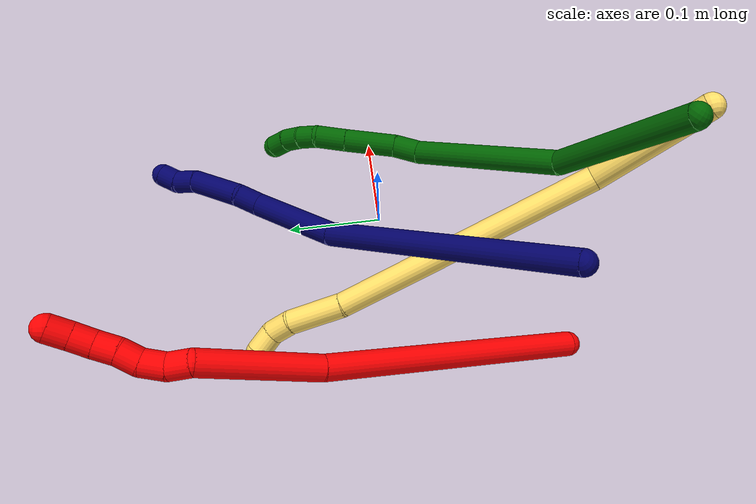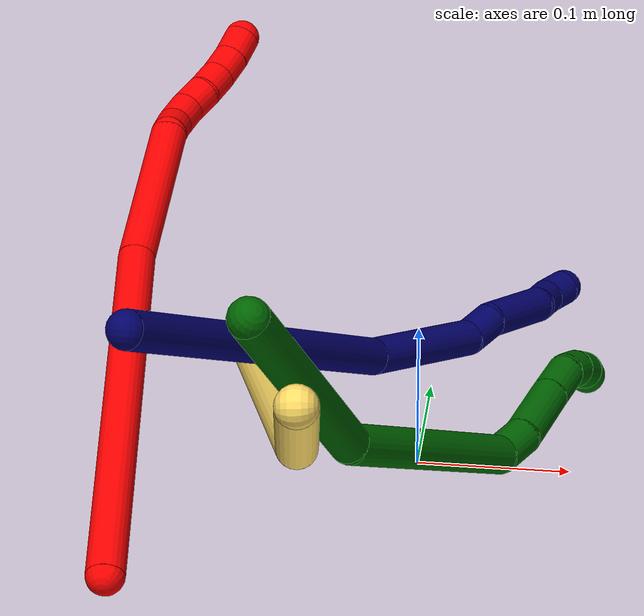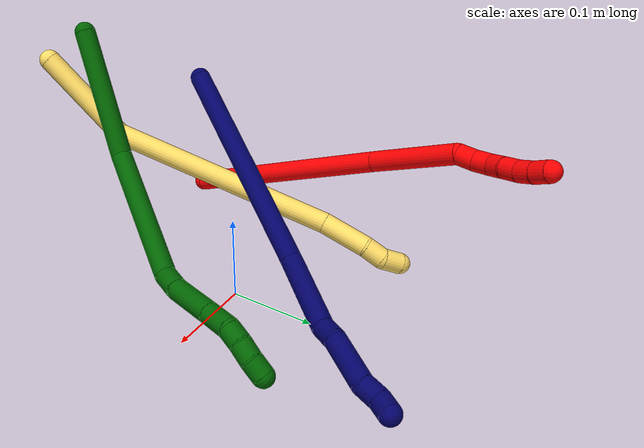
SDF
<sdf version="1.7">
 <world name="default">
  <model name="2">
   <static>0</static>
   <link name="2">
    <collision name="collision-cylinder-e_1_1_4">
     <pose>-0.014871 0.023188 0.128229 -0.1789 -0.113627 0.010202</pose>
     <geometry><cylinder><radius>0.0125</radius><length>0.262309</length></cylinder></geometry>
     <surface>
      <friction><ode><mu>1.16</mu><mu2>1.16</mu2><slip1>0</slip1><slip2>0</slip2></ode></friction>
      <contact><ode><kp>1e+06</kp><kd>1</kd><max_vel>0</max_vel><min_depth>0.001</min_depth></ode></contact>
     </surface>
    </collision>
    <visual name="visual-cylinder-e_1_1_4">
     <pose>-0.014871 0.023188 0.128229 -0.1789 -0.113627 0.010202</pose>
     <geometry><cylinder><radius>0.0125</radius><length>0.262309</length></cylinder></geometry>
     <material><ambient>1 0 0 1</ambient></material>
    </visual>
    <collision name="collision-cylinder-e_2_4_5">
     <pose>-0.042029 0.051682 0.311785 -0.095614 -0.217575 0.010451</pose>
     <geometry><cylinder><radius>0.0125</radius><length>0.113847</length></cylinder></geometry>
     <surface>
      <friction><ode><mu>1.16</mu><mu2>1.16</mu2><slip1>0</slip1><slip2>0</slip2></ode></friction>
      <contact><ode><kp>1e+06</kp><kd>1</kd><max_vel>0</max_vel><min_depth>0.001</min_depth></ode></contact>
     </surface>
    </collision>
    <visual name="visual-cylinder-e_2_4_5">
     <pose>-0.042029 0.051682 0.311785 -0.095614 -0.217575 0.010451</pose>
     <geometry><cylinder><radius>0.0125</radius><length>0.113847</length></cylinder></geometry>
     <material><ambient>1 0 0 1</ambient></material>
    </visual>
    <collision name="collision-cylinder-e_3_5_6">
     <pose>-0.052069 0.055121 0.377386 0.179868 0.212081 0.019196</pose>
     <geometry><cylinder><radius>0.0125</radius><length>0.021361</length></cylinder></geometry>
     <surface>
      <friction><ode><mu>1.16</mu><mu2>1.16</mu2><slip1>0</slip1><slip2>0</slip2></ode></friction>
      <contact><ode><kp>1e+06</kp><kd>1</kd><max_vel>0</max_vel><min_depth>0.001</min_depth></ode></contact>
     </surface>
    </collision>
    <visual name="visual-cylinder-e_3_5_6">
     <pose>-0.052069 0.055121 0.377386 0.179868 0.212081 0.019196</pose>
     <geometry><cylinder><radius>0.0125</radius><length>0.021361</length></cylinder></geometry>
     <material><ambient>1 0 0 1</ambient></material>
    </visual>
    <collision name="collision-cylinder-e_4_6_7">
     <pose>-0.051446 0.050841 0.398464 0.219578 -0.145811 -0.016101</pose>
     <geometry><cylinder><radius>0.0125</radius><length>0.022379</length></cylinder></geometry>
     <surface>
      <friction><ode><mu>1.16</mu><mu2>1.16</mu2><slip1>0</slip1><slip2>0</slip2></ode></friction>
      <contact><ode><kp>1e+06</kp><kd>1</kd><max_vel>0</max_vel><min_depth>0.001</min_depth></ode></contact>
     </surface>
    </collision>
    <visual name="visual-cylinder-e_4_6_7">
     <pose>-0.051446 0.050841 0.398464 0.219578 -0.145811 -0.016101</pose>
     <geometry><cylinder><radius>0.0125</radius><length>0.022379</length></cylinder></geometry>
     <material><ambient>1 0 0 1</ambient></material>
    </visual>
    <collision name="collision-cylinder-e_5_7_8">
     <pose>-0.057433 0.045515 0.417806 0.32903 -0.4503 -0.076009</pose>
     <geometry><cylinder><radius>0.0125</radius><length>0.020041</length></cylinder></geometry>
     <surface>
      <friction><ode><mu>1.16</mu><mu2>1.16</mu2><slip1>0</slip1><slip2>0</slip2></ode></friction>
      <contact><ode><kp>1e+06</kp><kd>1</kd><max_vel>0</max_vel><min_depth>0.001</min_depth></ode></contact>
     </surface>
    </collision>
    <visual name="visual-cylinder-e_5_7_8">
     <pose>-0.057433 0.045515 0.417806 0.32903 -0.4503 -0.076009</pose>
     <geometry><cylinder><radius>0.0125</radius><length>0.020041</length></cylinder></geometry>
     <material><ambient>1 0 0 1</ambient></material>
    </visual>
    <collision name="collision-cylinder-e_6_8_9">
     <pose>-0.064625 0.040121 0.43563 0.260816 -0.286375 -0.037813</pose>
     <geometry><cylinder><radius>0.0125</radius><length>0.020039</length></cylinder></geometry>
     <surface>
      <friction><ode><mu>1.16</mu><mu2>1.16</mu2><slip1>0</slip1><slip2>0</slip2></ode></friction>
      <contact><ode><kp>1e+06</kp><kd>1</kd><max_vel>0</max_vel><min_depth>0.001</min_depth></ode></contact>
     </surface>
    </collision>
    <visual name="visual-cylinder-e_6_8_9">
     <pose>-0.064625 0.040121 0.43563 0.260816 -0.286375 -0.037813</pose>
     <geometry><cylinder><radius>0.0125</radius><length>0.020039</length></cylinder></geometry>
     <material><ambient>1 0 0 1</ambient></material>
    </visual>
    <collision name="collision-cylinder-e_7_9_10">
     <pose>-0.071341 0.036028 0.453989 0.176165 -0.399078 -0.035714</pose>
     <geometry><cylinder><radius>0.0125</radius><length>0.020003</length></cylinder></geometry>
     <surface>
      <friction><ode><mu>1.16</mu><mu2>1.16</mu2><slip1>0</slip1><slip2>0</slip2></ode></friction>
      <contact><ode><kp>1e+06</kp><kd>1</kd><max_vel>0</max_vel><min_depth>0.001</min_depth></ode></contact>
     </surface>
    </collision>
    <visual name="visual-cylinder-e_7_9_10">
     <pose>-0.071341 0.036028 0.453989 0.176165 -0.399078 -0.035714</pose>
     <geometry><cylinder><radius>0.0125</radius><length>0.020003</length></cylinder></geometry>
     <material><ambient>1 0 0 1</ambient></material>
    </visual>
    <collision name="collision-cylinder-e_8_10_2">
     <pose>-0.07951 0.033905 0.472096 0.056083 -0.442058 -0.012605</pose>
     <geometry><cylinder><radius>0.0125</radius><length>0.020021</length></cylinder></geometry>
     <surface>
      <friction><ode><mu>1.16</mu><mu2>1.16</mu2><slip1>0</slip1><slip2>0</slip2></ode></friction>
      <contact><ode><kp>1e+06</kp><kd>1</kd><max_vel>0</max_vel><min_depth>0.001</min_depth></ode></contact>
     </surface>
    </collision>
    <visual name="visual-cylinder-e_8_10_2">
     <pose>-0.07951 0.033905 0.472096 0.056083 -0.442058 -0.012605</pose>
     <geometry><cylinder><radius>0.0125</radius><length>0.020021</length></cylinder></geometry>
     <material><ambient>1 0 0 1</ambient></material>
    </visual>
    <collision name="collision-sphere-2">
     <pose>-0.083793 0.033398 0.481131 0 -0 0</pose>
     <geometry><sphere><radius>0.0125</radius></sphere></geometry>
     <surface>
      <friction><ode><mu>1.16</mu><mu2>1.16</mu2><slip1>0</slip1><slip2>0</slip2></ode></friction>
      <contact><ode><kp>1e+06</kp><kd>1</kd><max_vel>0</max_vel><min_depth>0.001</min_depth></ode></contact>
     </surface>
    </collision>
    <visual name="visual-sphere-2">
     <pose>-0.083793 0.033398 0.481131 0 -0 0</pose>
     <geometry><sphere><radius>0.0125</radius></sphere></geometry>
     <material><ambient>1 0 0 1</ambient></material>
    </visual>
    <collision name="collision-sphere-10">
     <pose>-0.075227 0.034413 0.463062 0 -0 0</pose>
     <geometry><sphere><radius>0.0125</radius></sphere></geometry>
     <surface>
      <friction><ode><mu>1.16</mu><mu2>1.16</mu2><slip1>0</slip1><slip2>0</slip2></ode></friction>
      <contact><ode><kp>1e+06</kp><kd>1</kd><max_vel>0</max_vel><min_depth>0.001</min_depth></ode></contact>
     </surface>
    </collision>
    <visual name="visual-sphere-10">
     <pose>-0.075227 0.034413 0.463062 0 -0 0</pose>
     <geometry><sphere><radius>0.0125</radius></sphere></geometry>
     <material><ambient>1 0 0 1</ambient></material>
    </visual>
    <collision name="collision-sphere-9">
     <pose>-0.067455 0.037643 0.444916 0 -0 0</pose>
     <geometry><sphere><radius>0.0125</radius></sphere></geometry>
     <surface>
      <friction><ode><mu>1.16</mu><mu2>1.16</mu2><slip1>0</slip1><slip2>0</slip2></ode></friction>
      <contact><ode><kp>1e+06</kp><kd>1</kd><max_vel>0</max_vel><min_depth>0.001</min_depth></ode></contact>
     </surface>
    </collision>
    <visual name="visual-sphere-9">
     <pose>-0.067455 0.037643 0.444916 0 -0 0</pose>
     <geometry><sphere><radius>0.0125</radius></sphere></geometry>
     <material><ambient>1 0 0 1</ambient></material>
    </visual>
    <collision name="collision-sphere-4">
     <pose>-0.029741 0.046376 0.256458 0 -0 0</pose>
     <geometry><sphere><radius>0.0125</radius></sphere></geometry>
     <surface>
      <friction><ode><mu>1.16</mu><mu2>1.16</mu2><slip1>0</slip1><slip2>0</slip2></ode></friction>
      <contact><ode><kp>1e+06</kp><kd>1</kd><max_vel>0</max_vel><min_depth>0.001</min_depth></ode></contact>
     </surface>
    </collision>
    <visual name="visual-sphere-4">
     <pose>-0.029741 0.046376 0.256458 0 -0 0</pose>
     <geometry><sphere><radius>0.0125</radius></sphere></geometry>
     <material><ambient>1 0 0 1</ambient></material>
    </visual>
    <collision name="collision-sphere-1">
     <geometry><sphere><radius>0.0125</radius></sphere></geometry>
     <surface>
      <friction><ode><mu>1.16</mu><mu2>1.16</mu2><slip1>0</slip1><slip2>0</slip2></ode></friction>
      <contact><ode><kp>1e+06</kp><kd>1</kd><max_vel>0</max_vel><min_depth>0.001</min_depth></ode></contact>
     </surface>
    </collision>
    <visual name="visual-sphere-1">
     <geometry><sphere><radius>0.0125</radius></sphere></geometry>
     <material><ambient>1 0 0 1</ambient></material>
    </visual>
    <collision name="collision-sphere-8">
     <pose>-0.061794 0.0426 0.426344 0 -0 0</pose>
     <geometry><sphere><radius>0.0125</radius></sphere></geometry>
     <surface>
      <friction><ode><mu>1.16</mu><mu2>1.16</mu2><slip1>0</slip1><slip2>0</slip2></ode></friction>
      <contact><ode><kp>1e+06</kp><kd>1</kd><max_vel>0</max_vel><min_depth>0.001</min_depth></ode></contact>
     </surface>
    </collision>
    <visual name="visual-sphere-8">
     <pose>-0.061794 0.0426 0.426344 0 -0 0</pose>
     <geometry><sphere><radius>0.0125</radius></sphere></geometry>
     <material><ambient>1 0 0 1</ambient></material>
    </visual>
    <collision name="collision-sphere-5">
     <pose>-0.054317 0.056989 0.367113 0 -0 0</pose>
     <geometry><sphere><radius>0.0125</radius></sphere></geometry>
     <surface>
      <friction><ode><mu>1.16</mu><mu2>1.16</mu2><slip1>0</slip1><slip2>0</slip2></ode></friction>
      <contact><ode><kp>1e+06</kp><kd>1</kd><max_vel>0</max_vel><min_depth>0.001</min_depth></ode></contact>
     </surface>
    </collision>
    <visual name="visual-sphere-5">
     <pose>-0.054317 0.056989 0.367113 0 -0 0</pose>
     <geometry><sphere><radius>0.0125</radius></sphere></geometry>
     <material><ambient>1 0 0 1</ambient></material>
    </visual>
    <collision name="collision-sphere-6">
     <pose>-0.04982 0.053253 0.387659 0 -0 0</pose>
     <geometry><sphere><radius>0.0125</radius></sphere></geometry>
     <surface>
      <friction><ode><mu>1.16</mu><mu2>1.16</mu2><slip1>0</slip1><slip2>0</slip2></ode></friction>
      <contact><ode><kp>1e+06</kp><kd>1</kd><max_vel>0</max_vel><min_depth>0.001</min_depth></ode></contact>
     </surface>
    </collision>
    <visual name="visual-sphere-6">
     <pose>-0.04982 0.053253 0.387659 0 -0 0</pose>
     <geometry><sphere><radius>0.0125</radius></sphere></geometry>
     <material><ambient>1 0 0 1</ambient></material>
    </visual>
    <collision name="collision-sphere-7">
     <pose>-0.053072 0.04843 0.409269 0 -0 0</pose>
     <geometry><sphere><radius>0.0125</radius></sphere></geometry>
     <surface>
      <friction><ode><mu>1.16</mu><mu2>1.16</mu2><slip1>0</slip1><slip2>0</slip2></ode></friction>
      <contact><ode><kp>1e+06</kp><kd>1</kd><max_vel>0</max_vel><min_depth>0.001</min_depth></ode></contact>
     </surface>
    </collision>
    <visual name="visual-sphere-7">
     <pose>-0.053072 0.04843 0.409269 0 -0 0</pose>
     <geometry><sphere><radius>0.0125</radius></sphere></geometry>
     <material><ambient>1 0 0 1</ambient></material>
    </visual>
    <inertial>
     <pose>-0.032828 0.034794 0.243492 0 -0 0</pose>
     <mass>0.5</mass>
     <inertia>
      <ixx>0.001647</ixx>
      <ixy>0</ixy>
      <ixz>0</ixz>
      <iyy>0.001645</iyy>
      <iyz>0</iyz>
      <izz>-3.9e-05</izz>
     </inertia>
    </inertial>
   </link>
   <pose>-0.173604 -0.172957 0.011498 1.30635 0.916984 2.94623</pose>
  </model>
  <model name="5">
   <static>0</static>
   <link name="5">
    <collision name="collision-cylinder-e_1_1_4">
     <pose>0.017881 0.057506 -0.008095 -1.71065 0.298697 -0.34287</pose>
     <geometry><cylinder><radius>0.0125</radius><length>0.121528</length></cylinder></geometry>
     <surface>
      <friction><ode><mu>1.16</mu><mu2>1.16</mu2><slip1>0</slip1><slip2>0</slip2></ode></friction>
      <contact><ode><kp>1e+06</kp><kd>1</kd><max_vel>0</max_vel><min_depth>0.001</min_depth></ode></contact>
     </surface>
    </collision>
    <visual name="visual-cylinder-e_1_1_4">
     <pose>0.017881 0.057506 -0.008095 -1.71065 0.298697 -0.34287</pose>
     <geometry><cylinder><radius>0.0125</radius><length>0.121528</length></cylinder></geometry>
     <material><ambient>1 0.858824 0.4 1</ambient></material>
    </visual>
    <collision name="collision-cylinder-e_2_4_5">
     <pose>0.017568 0.24707 -0.048089 -1.80781 -0.133136 0.168971</pose>
     <geometry><cylinder><radius>0.0125</radius><length>0.274137</length></cylinder></geometry>
     <surface>
      <friction><ode><mu>1.16</mu><mu2>1.16</mu2><slip1>0</slip1><slip2>0</slip2></ode></friction>
      <contact><ode><kp>1e+06</kp><kd>1</kd><max_vel>0</max_vel><min_depth>0.001</min_depth></ode></contact>
     </surface>
    </collision>
    <visual name="visual-cylinder-e_2_4_5">
     <pose>0.017568 0.24707 -0.048089 -1.80781 -0.133136 0.168971</pose>
     <geometry><cylinder><radius>0.0125</radius><length>0.274137</length></cylinder></geometry>
     <material><ambient>1 0.858824 0.4 1</ambient></material>
    </visual>
    <collision name="collision-cylinder-e_3_5_6">
     <pose>-0.003825 0.407118 -0.082033 -1.64373 -0.113449 0.12202</pose>
     <geometry><cylinder><radius>0.0125</radius><length>0.056493</length></cylinder></geometry>
     <surface>
      <friction><ode><mu>1.16</mu><mu2>1.16</mu2><slip1>0</slip1><slip2>0</slip2></ode></friction>
      <contact><ode><kp>1e+06</kp><kd>1</kd><max_vel>0</max_vel><min_depth>0.001</min_depth></ode></contact>
     </surface>
    </collision>
    <visual name="visual-cylinder-e_3_5_6">
     <pose>-0.003825 0.407118 -0.082033 -1.64373 -0.113449 0.12202</pose>
     <geometry><cylinder><radius>0.0125</radius><length>0.056493</length></cylinder></geometry>
     <material><ambient>1 0.858824 0.4 1</ambient></material>
    </visual>
    <collision name="collision-cylinder-e_4_6_7">
     <pose>-0.00589 0.44676 -0.086339 -1.76239 0.095099 -0.115278</pose>
     <geometry><cylinder><radius>0.0125</radius><length>0.023846</length></cylinder></geometry>
     <surface>
      <friction><ode><mu>1.16</mu><mu2>1.16</mu2><slip1>0</slip1><slip2>0</slip2></ode></friction>
      <contact><ode><kp>1e+06</kp><kd>1</kd><max_vel>0</max_vel><min_depth>0.001</min_depth></ode></contact>
     </surface>
    </collision>
    <visual name="visual-cylinder-e_4_6_7">
     <pose>-0.00589 0.44676 -0.086339 -1.76239 0.095099 -0.115278</pose>
     <geometry><cylinder><radius>0.0125</radius><length>0.023846</length></cylinder></geometry>
     <material><ambient>1 0.858824 0.4 1</ambient></material>
    </visual>
    <collision name="collision-cylinder-e_5_7_2">
     <pose>-0.00448 0.467924 -0.095906 -2.22584 0.023176 -0.047023</pose>
     <geometry><cylinder><radius>0.0125</radius><length>0.023997</length></cylinder></geometry>
     <surface>
      <friction><ode><mu>1.16</mu><mu2>1.16</mu2><slip1>0</slip1><slip2>0</slip2></ode></friction>
      <contact><ode><kp>1e+06</kp><kd>1</kd><max_vel>0</max_vel><min_depth>0.001</min_depth></ode></contact>
     </surface>
    </collision>
    <visual name="visual-cylinder-e_5_7_2">
     <pose>-0.00448 0.467924 -0.095906 -2.22584 0.023176 -0.047023</pose>
     <geometry><cylinder><radius>0.0125</radius><length>0.023997</length></cylinder></geometry>
     <material><ambient>1 0.858824 0.4 1</ambient></material>
    </visual>
    <collision name="collision-sphere-2">
     <pose>-0.004202 0.477436 -0.103213 0 -0 0</pose>
     <geometry><sphere><radius>0.0125</radius></sphere></geometry>
     <surface>
      <friction><ode><mu>1.16</mu><mu2>1.16</mu2><slip1>0</slip1><slip2>0</slip2></ode></friction>
      <contact><ode><kp>1e+06</kp><kd>1</kd><max_vel>0</max_vel><min_depth>0.001</min_depth></ode></contact>
     </surface>
    </collision>
    <visual name="visual-sphere-2">
     <pose>-0.004202 0.477436 -0.103213 0 -0 0</pose>
     <geometry><sphere><radius>0.0125</radius></sphere></geometry>
     <material><ambient>1 0.858824 0.4 1</ambient></material>
    </visual>
    <collision name="collision-sphere-7">
     <pose>-0.004758 0.458412 -0.088599 0 -0 0</pose>
     <geometry><sphere><radius>0.0125</radius></sphere></geometry>
     <surface>
      <friction><ode><mu>1.16</mu><mu2>1.16</mu2><slip1>0</slip1><slip2>0</slip2></ode></friction>
      <contact><ode><kp>1e+06</kp><kd>1</kd><max_vel>0</max_vel><min_depth>0.001</min_depth></ode></contact>
     </surface>
    </collision>
    <visual name="visual-sphere-7">
     <pose>-0.004758 0.458412 -0.088599 0 -0 0</pose>
     <geometry><sphere><radius>0.0125</radius></sphere></geometry>
     <material><ambient>1 0.858824 0.4 1</ambient></material>
    </visual>
    <collision name="collision-sphere-6">
     <pose>-0.007022 0.435108 -0.084078 0 -0 0</pose>
     <geometry><sphere><radius>0.0125</radius></sphere></geometry>
     <surface>
      <friction><ode><mu>1.16</mu><mu2>1.16</mu2><slip1>0</slip1><slip2>0</slip2></ode></friction>
      <contact><ode><kp>1e+06</kp><kd>1</kd><max_vel>0</max_vel><min_depth>0.001</min_depth></ode></contact>
     </surface>
    </collision>
    <visual name="visual-sphere-6">
     <pose>-0.007022 0.435108 -0.084078 0 -0 0</pose>
     <geometry><sphere><radius>0.0125</radius></sphere></geometry>
     <material><ambient>1 0.858824 0.4 1</ambient></material>
    </visual>
    <collision name="collision-sphere-5">
     <pose>-0.000627 0.379128 -0.079988 0 -0 0</pose>
     <geometry><sphere><radius>0.0125</radius></sphere></geometry>
     <surface>
      <friction><ode><mu>1.16</mu><mu2>1.16</mu2><slip1>0</slip1><slip2>0</slip2></ode></friction>
      <contact><ode><kp>1e+06</kp><kd>1</kd><max_vel>0</max_vel><min_depth>0.001</min_depth></ode></contact>
     </surface>
    </collision>
    <visual name="visual-sphere-5">
     <pose>-0.000627 0.379128 -0.079988 0 -0 0</pose>
     <geometry><sphere><radius>0.0125</radius></sphere></geometry>
     <material><ambient>1 0.858824 0.4 1</ambient></material>
    </visual>
    <collision name="collision-sphere-1">
     <geometry><sphere><radius>0.0125</radius></sphere></geometry>
     <surface>
      <friction><ode><mu>1.16</mu><mu2>1.16</mu2><slip1>0</slip1><slip2>0</slip2></ode></friction>
      <contact><ode><kp>1e+06</kp><kd>1</kd><max_vel>0</max_vel><min_depth>0.001</min_depth></ode></contact>
     </surface>
    </collision>
    <visual name="visual-sphere-1">
     <geometry><sphere><radius>0.0125</radius></sphere></geometry>
     <material><ambient>1 0.858824 0.4 1</ambient></material>
    </visual>
    <collision name="collision-sphere-4">
     <pose>0.035763 0.115013 -0.01619 0 -0 0</pose>
     <geometry><sphere><radius>0.0125</radius></sphere></geometry>
     <surface>
      <friction><ode><mu>1.16</mu><mu2>1.16</mu2><slip1>0</slip1><slip2>0</slip2></ode></friction>
      <contact><ode><kp>1e+06</kp><kd>1</kd><max_vel>0</max_vel><min_depth>0.001</min_depth></ode></contact>
     </surface>
    </collision>
    <visual name="visual-sphere-4">
     <pose>0.035763 0.115013 -0.01619 0 -0 0</pose>
     <geometry><sphere><radius>0.0125</radius></sphere></geometry>
     <material><ambient>1 0.858824 0.4 1</ambient></material>
    </visual>
    <inertial>
     <pose>0.01305 0.239202 -0.046323 0 -0 0</pose>
     <mass>0.5</mass>
     <inertia>
      <ixx>0.002088</ixx>
      <ixy>0</ixy>
      <ixz>0</ixz>
      <iyy>-9.3e-05</iyy>
      <iyz>0</iyz>
      <izz>-0.001654</izz>
     </inertia>
    </inertial>
   </link>
   <pose>-0.038227 -0.293816 0.20989 -1.37208 1.14391 -1.35436</pose>
  </model>
  <model name="6">
   <static>0</static>
   <link name="6">
    <collision name="collision-cylinder-e_1_1_4">
     <pose>0.049081 0.012956 -0.058581 -2.92393 0.685658 -2.54746</pose>
     <geometry><cylinder><radius>0.0125</radius><length>0.15503</length></cylinder></geometry>
     <surface>
      <friction><ode><mu>1.16</mu><mu2>1.16</mu2><slip1>0</slip1><slip2>0</slip2></ode></friction>
      <contact><ode><kp>1e+06</kp><kd>1</kd><max_vel>0</max_vel><min_depth>0.001</min_depth></ode></contact>
     </surface>
    </collision>
    <visual name="visual-cylinder-e_1_1_4">
     <pose>0.049081 0.012956 -0.058581 -2.92393 0.685658 -2.54746</pose>
     <geometry><cylinder><radius>0.0125</radius><length>0.15503</length></cylinder></geometry>
     <material><ambient>0 0.392157 0.003922 1</ambient></material>
    </visual>
    <collision name="collision-cylinder-e_2_4_5">
     <pose>0.151452 0.072523 -0.161942 -2.33617 0.689479 -1.40074</pose>
     <geometry><cylinder><radius>0.0125</radius><length>0.167542</length></cylinder></geometry>
     <surface>
      <friction><ode><mu>1.16</mu><mu2>1.16</mu2><slip1>0</slip1><slip2>0</slip2></ode></friction>
      <contact><ode><kp>1e+06</kp><kd>1</kd><max_vel>0</max_vel><min_depth>0.001</min_depth></ode></contact>
     </surface>
    </collision>
    <visual name="visual-cylinder-e_2_4_5">
     <pose>0.151452 0.072523 -0.161942 -2.33617 0.689479 -1.40074</pose>
     <geometry><cylinder><radius>0.0125</radius><length>0.167542</length></cylinder></geometry>
     <material><ambient>0 0.392157 0.003922 1</ambient></material>
    </visual>
    <collision name="collision-cylinder-e_3_5_6">
     <pose>0.210309 0.131535 -0.210979 -1.90145 0.401554 -0.555344</pose>
     <geometry><cylinder><radius>0.0125</radius><length>0.028491</length></cylinder></geometry>
     <surface>
      <friction><ode><mu>1.16</mu><mu2>1.16</mu2><slip1>0</slip1><slip2>0</slip2></ode></friction>
      <contact><ode><kp>1e+06</kp><kd>1</kd><max_vel>0</max_vel><min_depth>0.001</min_depth></ode></contact>
     </surface>
    </collision>
    <visual name="visual-cylinder-e_3_5_6">
     <pose>0.210309 0.131535 -0.210979 -1.90145 0.401554 -0.555344</pose>
     <geometry><cylinder><radius>0.0125</radius><length>0.028491</length></cylinder></geometry>
     <material><ambient>0 0.392157 0.003922 1</ambient></material>
    </visual>
    <collision name="collision-cylinder-e_4_6_7">
     <pose>0.221985 0.1688 -0.225872 -1.97501 0.222167 -0.334904</pose>
     <geometry><cylinder><radius>0.0125</radius><length>0.055447</length></cylinder></geometry>
     <surface>
      <friction><ode><mu>1.16</mu><mu2>1.16</mu2><slip1>0</slip1><slip2>0</slip2></ode></friction>
      <contact><ode><kp>1e+06</kp><kd>1</kd><max_vel>0</max_vel><min_depth>0.001</min_depth></ode></contact>
     </surface>
    </collision>
    <visual name="visual-cylinder-e_4_6_7">
     <pose>0.221985 0.1688 -0.225872 -1.97501 0.222167 -0.334904</pose>
     <geometry><cylinder><radius>0.0125</radius><length>0.055447</length></cylinder></geometry>
     <material><ambient>0 0.392157 0.003922 1</ambient></material>
    </visual>
    <collision name="collision-cylinder-e_5_7_8">
     <pose>0.231919 0.208416 -0.242553 -1.95968 0.235461 -0.348984</pose>
     <geometry><cylinder><radius>0.0125</radius><length>0.032793</length></cylinder></geometry>
     <surface>
      <friction><ode><mu>1.16</mu><mu2>1.16</mu2><slip1>0</slip1><slip2>0</slip2></ode></friction>
      <contact><ode><kp>1e+06</kp><kd>1</kd><max_vel>0</max_vel><min_depth>0.001</min_depth></ode></contact>
     </surface>
    </collision>
    <visual name="visual-cylinder-e_5_7_8">
     <pose>0.231919 0.208416 -0.242553 -1.95968 0.235461 -0.348984</pose>
     <geometry><cylinder><radius>0.0125</radius><length>0.032793</length></cylinder></geometry>
     <material><ambient>0 0.392157 0.003922 1</ambient></material>
    </visual>
    <collision name="collision-cylinder-e_6_8_9">
     <pose>0.240076 0.230211 -0.254751 -2.28901 0.433746 -0.903441</pose>
     <geometry><cylinder><radius>0.0125</radius><length>0.020611</length></cylinder></geometry>
     <surface>
      <friction><ode><mu>1.16</mu><mu2>1.16</mu2><slip1>0</slip1><slip2>0</slip2></ode></friction>
      <contact><ode><kp>1e+06</kp><kd>1</kd><max_vel>0</max_vel><min_depth>0.001</min_depth></ode></contact>
     </surface>
    </collision>
    <visual name="visual-cylinder-e_6_8_9">
     <pose>0.240076 0.230211 -0.254751 -2.28901 0.433746 -0.903441</pose>
     <geometry><cylinder><radius>0.0125</radius><length>0.020611</length></cylinder></geometry>
     <material><ambient>0 0.392157 0.003922 1</ambient></material>
    </visual>
    <collision name="collision-cylinder-e_7_9_10">
     <pose>0.249165 0.242732 -0.267813 -2.47101 0.494861 -1.25455</pose>
     <geometry><cylinder><radius>0.0125</radius><length>0.020038</length></cylinder></geometry>
     <surface>
      <friction><ode><mu>1.16</mu><mu2>1.16</mu2><slip1>0</slip1><slip2>0</slip2></ode></friction>
      <contact><ode><kp>1e+06</kp><kd>1</kd><max_vel>0</max_vel><min_depth>0.001</min_depth></ode></contact>
     </surface>
    </collision>
    <visual name="visual-cylinder-e_7_9_10">
     <pose>0.249165 0.242732 -0.267813 -2.47101 0.494861 -1.25455</pose>
     <geometry><cylinder><radius>0.0125</radius><length>0.020038</length></cylinder></geometry>
     <material><ambient>0 0.392157 0.003922 1</ambient></material>
    </visual>
    <collision name="collision-cylinder-e_8_10_2">
     <pose>0.257617 0.252401 -0.283045 -2.67528 0.377356 -1.35444</pose>
     <geometry><cylinder><radius>0.0125</radius><length>0.020049</length></cylinder></geometry>
     <surface>
      <friction><ode><mu>1.16</mu><mu2>1.16</mu2><slip1>0</slip1><slip2>0</slip2></ode></friction>
      <contact><ode><kp>1e+06</kp><kd>1</kd><max_vel>0</max_vel><min_depth>0.001</min_depth></ode></contact>
     </surface>
    </collision>
    <visual name="visual-cylinder-e_8_10_2">
     <pose>0.257617 0.252401 -0.283045 -2.67528 0.377356 -1.35444</pose>
     <geometry><cylinder><radius>0.0125</radius><length>0.020049</length></cylinder></geometry>
     <material><ambient>0 0.392157 0.003922 1</ambient></material>
    </visual>
    <collision name="collision-sphere-2">
     <pose>0.26131 0.256591 -0.291369 0 -0 0</pose>
     <geometry><sphere><radius>0.0125</radius></sphere></geometry>
     <surface>
      <friction><ode><mu>1.16</mu><mu2>1.16</mu2><slip1>0</slip1><slip2>0</slip2></ode></friction>
      <contact><ode><kp>1e+06</kp><kd>1</kd><max_vel>0</max_vel><min_depth>0.001</min_depth></ode></contact>
     </surface>
    </collision>
    <visual name="visual-sphere-2">
     <pose>0.26131 0.256591 -0.291369 0 -0 0</pose>
     <geometry><sphere><radius>0.0125</radius></sphere></geometry>
     <material><ambient>0 0.392157 0.003922 1</ambient></material>
    </visual>
    <collision name="collision-sphere-10">
     <pose>0.253923 0.248211 -0.27472 0 -0 0</pose>
     <geometry><sphere><radius>0.0125</radius></sphere></geometry>
     <surface>
      <friction><ode><mu>1.16</mu><mu2>1.16</mu2><slip1>0</slip1><slip2>0</slip2></ode></friction>
      <contact><ode><kp>1e+06</kp><kd>1</kd><max_vel>0</max_vel><min_depth>0.001</min_depth></ode></contact>
     </surface>
    </collision>
    <visual name="visual-sphere-10">
     <pose>0.253923 0.248211 -0.27472 0 -0 0</pose>
     <geometry><sphere><radius>0.0125</radius></sphere></geometry>
     <material><ambient>0 0.392157 0.003922 1</ambient></material>
    </visual>
    <collision name="collision-sphere-9">
     <pose>0.244407 0.237252 -0.260905 0 -0 0</pose>
     <geometry><sphere><radius>0.0125</radius></sphere></geometry>
     <surface>
      <friction><ode><mu>1.16</mu><mu2>1.16</mu2><slip1>0</slip1><slip2>0</slip2></ode></friction>
      <contact><ode><kp>1e+06</kp><kd>1</kd><max_vel>0</max_vel><min_depth>0.001</min_depth></ode></contact>
     </surface>
    </collision>
    <visual name="visual-sphere-9">
     <pose>0.244407 0.237252 -0.260905 0 -0 0</pose>
     <geometry><sphere><radius>0.0125</radius></sphere></geometry>
     <material><ambient>0 0.392157 0.003922 1</ambient></material>
    </visual>
    <collision name="collision-sphere-4">
     <pose>0.098162 0.025912 -0.117162 0 -0 0</pose>
     <geometry><sphere><radius>0.0125</radius></sphere></geometry>
     <surface>
      <friction><ode><mu>1.16</mu><mu2>1.16</mu2><slip1>0</slip1><slip2>0</slip2></ode></friction>
      <contact><ode><kp>1e+06</kp><kd>1</kd><max_vel>0</max_vel><min_depth>0.001</min_depth></ode></contact>
     </surface>
    </collision>
    <visual name="visual-sphere-4">
     <pose>0.098162 0.025912 -0.117162 0 -0 0</pose>
     <geometry><sphere><radius>0.0125</radius></sphere></geometry>
     <material><ambient>0 0.392157 0.003922 1</ambient></material>
    </visual>
    <collision name="collision-sphere-1">
     <geometry><sphere><radius>0.0125</radius></sphere></geometry>
     <surface>
      <friction><ode><mu>1.16</mu><mu2>1.16</mu2><slip1>0</slip1><slip2>0</slip2></ode></friction>
      <contact><ode><kp>1e+06</kp><kd>1</kd><max_vel>0</max_vel><min_depth>0.001</min_depth></ode></contact>
     </surface>
    </collision>
    <visual name="visual-sphere-1">
     <geometry><sphere><radius>0.0125</radius></sphere></geometry>
     <material><ambient>0 0.392157 0.003922 1</ambient></material>
    </visual>
    <collision name="collision-sphere-8">
     <pose>0.235745 0.22317 -0.248598 0 -0 0</pose>
     <geometry><sphere><radius>0.0125</radius></sphere></geometry>
     <surface>
      <friction><ode><mu>1.16</mu><mu2>1.16</mu2><slip1>0</slip1><slip2>0</slip2></ode></friction>
      <contact><ode><kp>1e+06</kp><kd>1</kd><max_vel>0</max_vel><min_depth>0.001</min_depth></ode></contact>
     </surface>
    </collision>
    <visual name="visual-sphere-8">
     <pose>0.235745 0.22317 -0.248598 0 -0 0</pose>
     <geometry><sphere><radius>0.0125</radius></sphere></geometry>
     <material><ambient>0 0.392157 0.003922 1</ambient></material>
    </visual>
    <collision name="collision-sphere-5">
     <pose>0.204741 0.119133 -0.206722 0 -0 0</pose>
     <geometry><sphere><radius>0.0125</radius></sphere></geometry>
     <surface>
      <friction><ode><mu>1.16</mu><mu2>1.16</mu2><slip1>0</slip1><slip2>0</slip2></ode></friction>
      <contact><ode><kp>1e+06</kp><kd>1</kd><max_vel>0</max_vel><min_depth>0.001</min_depth></ode></contact>
     </surface>
    </collision>
    <visual name="visual-sphere-5">
     <pose>0.204741 0.119133 -0.206722 0 -0 0</pose>
     <geometry><sphere><radius>0.0125</radius></sphere></geometry>
     <material><ambient>0 0.392157 0.003922 1</ambient></material>
    </visual>
    <collision name="collision-sphere-6">
     <pose>0.215877 0.143937 -0.215236 0 -0 0</pose>
     <geometry><sphere><radius>0.0125</radius></sphere></geometry>
     <surface>
      <friction><ode><mu>1.16</mu><mu2>1.16</mu2><slip1>0</slip1><slip2>0</slip2></ode></friction>
      <contact><ode><kp>1e+06</kp><kd>1</kd><max_vel>0</max_vel><min_depth>0.001</min_depth></ode></contact>
     </surface>
    </collision>
    <visual name="visual-sphere-6">
     <pose>0.215877 0.143937 -0.215236 0 -0 0</pose>
     <geometry><sphere><radius>0.0125</radius></sphere></geometry>
     <material><ambient>0 0.392157 0.003922 1</ambient></material>
    </visual>
    <collision name="collision-sphere-7">
     <pose>0.228094 0.193662 -0.236507 0 -0 0</pose>
     <geometry><sphere><radius>0.0125</radius></sphere></geometry>
     <surface>
      <friction><ode><mu>1.16</mu><mu2>1.16</mu2><slip1>0</slip1><slip2>0</slip2></ode></friction>
      <contact><ode><kp>1e+06</kp><kd>1</kd><max_vel>0</max_vel><min_depth>0.001</min_depth></ode></contact>
     </surface>
    </collision>
    <visual name="visual-sphere-7">
     <pose>0.228094 0.193662 -0.236507 0 -0 0</pose>
     <geometry><sphere><radius>0.0125</radius></sphere></geometry>
     <material><ambient>0 0.392157 0.003922 1</ambient></material>
    </visual>
    <inertial>
     <pose>0.14799 0.09754 -0.157989 0 -0 0</pose>
     <mass>0.5</mass>
     <inertia>
      <ixx>-0.00056</ixx>
      <ixy>0</ixy>
      <ixz>0</ixz>
      <iyy>-2.5e-05</iyy>
      <iyz>0</iyz>
      <izz>-0.000783</izz>
     </inertia>
    </inertial>
   </link>
   <pose>-0.068493 -0.259503 0.24243 0.531985 0.493465 -0.004686</pose>
  </model>
  <model name="7">
   <static>0</static>
   <link name="7">
    <collision name="collision-cylinder-e_1_1_4">
     <pose>0.061873 0.122752 -0.005367 -1.61449 0.466501 -0.486547</pose>
     <geometry><cylinder><radius>0.0125</radius><length>0.275138</length></cylinder></geometry>
     <surface>
      <friction><ode><mu>1.16</mu><mu2>1.16</mu2><slip1>0</slip1><slip2>0</slip2></ode></friction>
      <contact><ode><kp>1e+06</kp><kd>1</kd><max_vel>0</max_vel><min_depth>0.001</min_depth></ode></contact>
     </surface>
    </collision>
    <visual name="visual-cylinder-e_1_1_4">
     <pose>0.061873 0.122752 -0.005367 -1.61449 0.466501 -0.486547</pose>
     <geometry><cylinder><radius>0.0125</radius><length>0.275138</length></cylinder></geometry>
     <material><ambient>0.003922 0 0.403922 1</ambient></material>
    </visual>
    <collision name="collision-cylinder-e_2_4_5">
     <pose>0.152921 0.283853 -0.002464 -1.3584 0.639418 -0.522353</pose>
     <geometry><cylinder><radius>0.0125</radius><length>0.097779</length></cylinder></geometry>
     <surface>
      <friction><ode><mu>1.16</mu><mu2>1.16</mu2><slip1>0</slip1><slip2>0</slip2></ode></friction>
      <contact><ode><kp>1e+06</kp><kd>1</kd><max_vel>0</max_vel><min_depth>0.001</min_depth></ode></contact>
     </surface>
    </collision>
    <visual name="visual-cylinder-e_2_4_5">
     <pose>0.152921 0.283853 -0.002464 -1.3584 0.639418 -0.522353</pose>
     <geometry><cylinder><radius>0.0125</radius><length>0.097779</length></cylinder></geometry>
     <material><ambient>0.003922 0 0.403922 1</ambient></material>
    </visual>
    <collision name="collision-cylinder-e_3_5_6">
     <pose>0.188599 0.331084 0.012346 -0.936053 0.532857 -0.274181</pose>
     <geometry><cylinder><radius>0.0125</radius><length>0.025609</length></cylinder></geometry>
     <surface>
      <friction><ode><mu>1.16</mu><mu2>1.16</mu2><slip1>0</slip1><slip2>0</slip2></ode></friction>
      <contact><ode><kp>1e+06</kp><kd>1</kd><max_vel>0</max_vel><min_depth>0.001</min_depth></ode></contact>
     </surface>
    </collision>
    <visual name="visual-cylinder-e_3_5_6">
     <pose>0.188599 0.331084 0.012346 -0.936053 0.532857 -0.274181</pose>
     <geometry><cylinder><radius>0.0125</radius><length>0.025609</length></cylinder></geometry>
     <material><ambient>0.003922 0 0.403922 1</ambient></material>
    </visual>
    <collision name="collision-cylinder-e_4_6_7">
     <pose>0.210609 0.363932 0.025532 -1.30028 0.557461 -0.428557</pose>
     <geometry><cylinder><radius>0.0125</radius><length>0.058617</length></cylinder></geometry>
     <surface>
      <friction><ode><mu>1.16</mu><mu2>1.16</mu2><slip1>0</slip1><slip2>0</slip2></ode></friction>
      <contact><ode><kp>1e+06</kp><kd>1</kd><max_vel>0</max_vel><min_depth>0.001</min_depth></ode></contact>
     </surface>
    </collision>
    <visual name="visual-cylinder-e_4_6_7">
     <pose>0.210609 0.363932 0.025532 -1.30028 0.557461 -0.428557</pose>
     <geometry><cylinder><radius>0.0125</radius><length>0.058617</length></cylinder></geometry>
     <material><ambient>0.003922 0 0.403922 1</ambient></material>
    </visual>
    <collision name="collision-cylinder-e_5_7_8">
     <pose>0.228722 0.39859 0.03514 -1.30061 0.230912 -0.175981</pose>
     <geometry><cylinder><radius>0.0125</radius><length>0.022793</length></cylinder></geometry>
     <surface>
      <friction><ode><mu>1.16</mu><mu2>1.16</mu2><slip1>0</slip1><slip2>0</slip2></ode></friction>
      <contact><ode><kp>1e+06</kp><kd>1</kd><max_vel>0</max_vel><min_depth>0.001</min_depth></ode></contact>
     </surface>
    </collision>
    <visual name="visual-cylinder-e_5_7_8">
     <pose>0.228722 0.39859 0.03514 -1.30061 0.230912 -0.175981</pose>
     <geometry><cylinder><radius>0.0125</radius><length>0.022793</length></cylinder></geometry>
     <material><ambient>0.003922 0 0.403922 1</ambient></material>
    </visual>
    <collision name="collision-cylinder-e_6_8_2">
     <pose>0.237002 0.416565 0.042028 -1.07633 0.600865 -0.365743</pose>
     <geometry><cylinder><radius>0.0125</radius><length>0.020064</length></cylinder></geometry>
     <surface>
      <friction><ode><mu>1.16</mu><mu2>1.16</mu2><slip1>0</slip1><slip2>0</slip2></ode></friction>
      <contact><ode><kp>1e+06</kp><kd>1</kd><max_vel>0</max_vel><min_depth>0.001</min_depth></ode></contact>
     </surface>
    </collision>
    <visual name="visual-cylinder-e_6_8_2">
     <pose>0.237002 0.416565 0.042028 -1.07633 0.600865 -0.365743</pose>
     <geometry><cylinder><radius>0.0125</radius><length>0.020064</length></cylinder></geometry>
     <material><ambient>0.003922 0 0.403922 1</ambient></material>
    </visual>
    <collision name="collision-sphere-2">
     <pose>0.242674 0.423849 0.045955 0 -0 0</pose>
     <geometry><sphere><radius>0.0125</radius></sphere></geometry>
     <surface>
      <friction><ode><mu>1.16</mu><mu2>1.16</mu2><slip1>0</slip1><slip2>0</slip2></ode></friction>
      <contact><ode><kp>1e+06</kp><kd>1</kd><max_vel>0</max_vel><min_depth>0.001</min_depth></ode></contact>
     </surface>
    </collision>
    <visual name="visual-sphere-2">
     <pose>0.242674 0.423849 0.045955 0 -0 0</pose>
     <geometry><sphere><radius>0.0125</radius></sphere></geometry>
     <material><ambient>0.003922 0 0.403922 1</ambient></material>
    </visual>
    <collision name="collision-sphere-4">
     <pose>0.123747 0.245504 -0.010734 0 -0 0</pose>
     <geometry><sphere><radius>0.0125</radius></sphere></geometry>
     <surface>
      <friction><ode><mu>1.16</mu><mu2>1.16</mu2><slip1>0</slip1><slip2>0</slip2></ode></friction>
      <contact><ode><kp>1e+06</kp><kd>1</kd><max_vel>0</max_vel><min_depth>0.001</min_depth></ode></contact>
     </surface>
    </collision>
    <visual name="visual-sphere-4">
     <pose>0.123747 0.245504 -0.010734 0 -0 0</pose>
     <geometry><sphere><radius>0.0125</radius></sphere></geometry>
     <material><ambient>0.003922 0 0.403922 1</ambient></material>
    </visual>
    <collision name="collision-sphere-1">
     <geometry><sphere><radius>0.0125</radius></sphere></geometry>
     <surface>
      <friction><ode><mu>1.16</mu><mu2>1.16</mu2><slip1>0</slip1><slip2>0</slip2></ode></friction>
      <contact><ode><kp>1e+06</kp><kd>1</kd><max_vel>0</max_vel><min_depth>0.001</min_depth></ode></contact>
     </surface>
    </collision>
    <visual name="visual-sphere-1">
     <geometry><sphere><radius>0.0125</radius></sphere></geometry>
     <material><ambient>0.003922 0 0.403922 1</ambient></material>
    </visual>
    <collision name="collision-sphere-8">
     <pose>0.231331 0.409282 0.038101 0 -0 0</pose>
     <geometry><sphere><radius>0.0125</radius></sphere></geometry>
     <surface>
      <friction><ode><mu>1.16</mu><mu2>1.16</mu2><slip1>0</slip1><slip2>0</slip2></ode></friction>
      <contact><ode><kp>1e+06</kp><kd>1</kd><max_vel>0</max_vel><min_depth>0.001</min_depth></ode></contact>
     </surface>
    </collision>
    <visual name="visual-sphere-8">
     <pose>0.231331 0.409282 0.038101 0 -0 0</pose>
     <geometry><sphere><radius>0.0125</radius></sphere></geometry>
     <material><ambient>0.003922 0 0.403922 1</ambient></material>
    </visual>
    <collision name="collision-sphere-5">
     <pose>0.182095 0.322203 0.005806 0 -0 0</pose>
     <geometry><sphere><radius>0.0125</radius></sphere></geometry>
     <surface>
      <friction><ode><mu>1.16</mu><mu2>1.16</mu2><slip1>0</slip1><slip2>0</slip2></ode></friction>
      <contact><ode><kp>1e+06</kp><kd>1</kd><max_vel>0</max_vel><min_depth>0.001</min_depth></ode></contact>
     </surface>
    </collision>
    <visual name="visual-sphere-5">
     <pose>0.182095 0.322203 0.005806 0 -0 0</pose>
     <geometry><sphere><radius>0.0125</radius></sphere></geometry>
     <material><ambient>0.003922 0 0.403922 1</ambient></material>
    </visual>
    <collision name="collision-sphere-6">
     <pose>0.195104 0.339965 0.018886 0 -0 0</pose>
     <geometry><sphere><radius>0.0125</radius></sphere></geometry>
     <surface>
      <friction><ode><mu>1.16</mu><mu2>1.16</mu2><slip1>0</slip1><slip2>0</slip2></ode></friction>
      <contact><ode><kp>1e+06</kp><kd>1</kd><max_vel>0</max_vel><min_depth>0.001</min_depth></ode></contact>
     </surface>
    </collision>
    <visual name="visual-sphere-6">
     <pose>0.195104 0.339965 0.018886 0 -0 0</pose>
     <geometry><sphere><radius>0.0125</radius></sphere></geometry>
     <material><ambient>0.003922 0 0.403922 1</ambient></material>
    </visual>
    <collision name="collision-sphere-7">
     <pose>0.226114 0.387898 0.032179 0 -0 0</pose>
     <geometry><sphere><radius>0.0125</radius></sphere></geometry>
     <surface>
      <friction><ode><mu>1.16</mu><mu2>1.16</mu2><slip1>0</slip1><slip2>0</slip2></ode></friction>
      <contact><ode><kp>1e+06</kp><kd>1</kd><max_vel>0</max_vel><min_depth>0.001</min_depth></ode></contact>
     </surface>
    </collision>
    <visual name="visual-sphere-7">
     <pose>0.226114 0.387898 0.032179 0 -0 0</pose>
     <geometry><sphere><radius>0.0125</radius></sphere></geometry>
     <material><ambient>0.003922 0 0.403922 1</ambient></material>
    </visual>
    <inertial>
     <pose>0.11824 0.217566 0.003479 0 -0 0</pose>
     <mass>0.5</mass>
     <inertia>
      <ixx>0.000704</ixx>
      <ixy>0</ixy>
      <ixz>0</ixz>
      <iyy>-0.000387</iyy>
      <iyz>0</iyz>
      <izz>-0.002486</izz>
     </inertia>
    </inertial>
   </link>
   <pose>-0.157479 -0.157677 0.174589 -0.485021 0.025506 -0.006715</pose>
  </model>
 </world>
</sdf>
